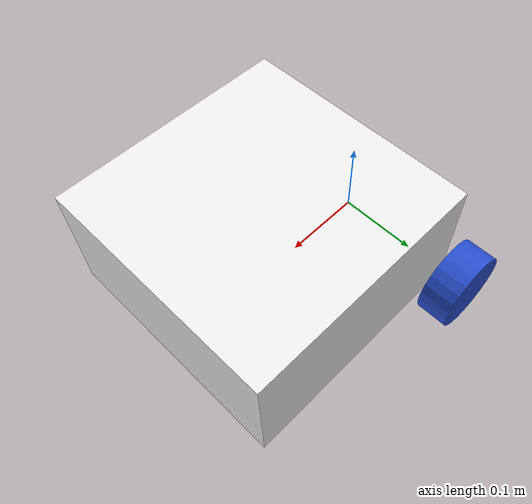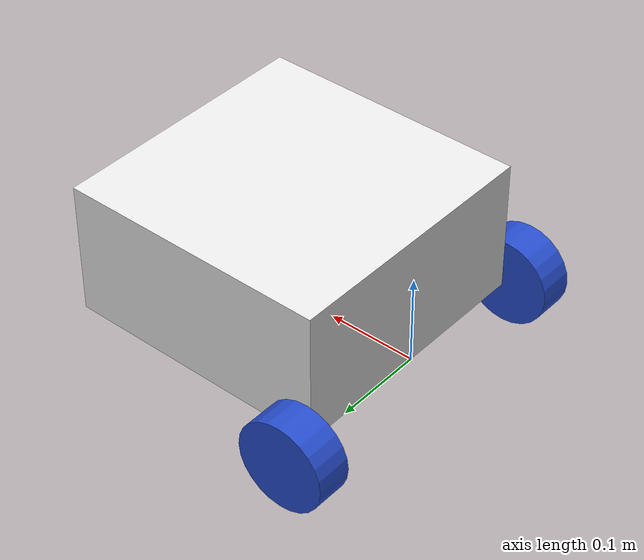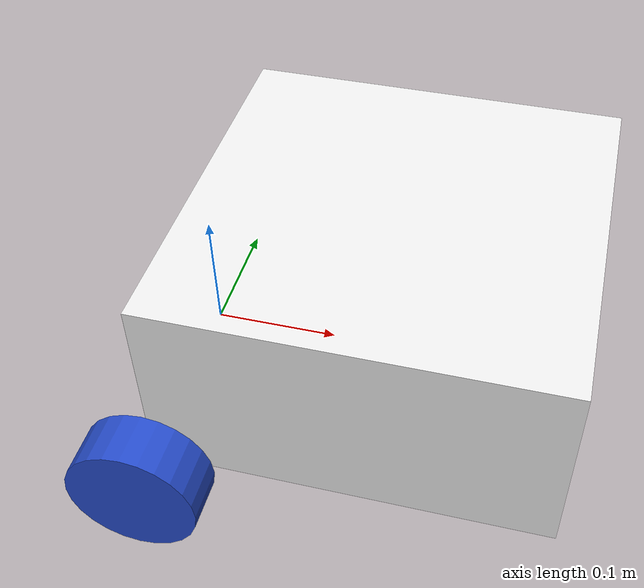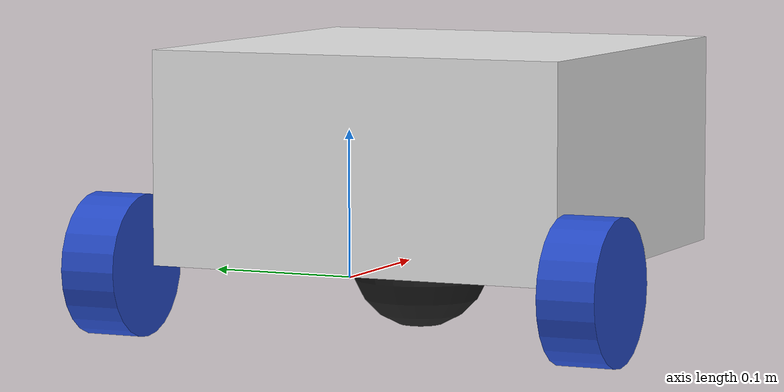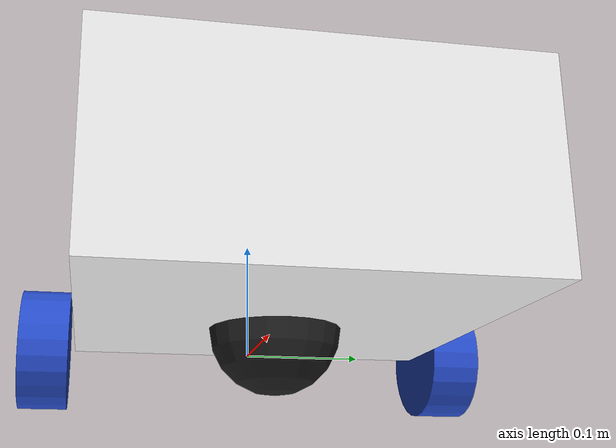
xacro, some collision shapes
<?xml version="1.0"?>
<robot xmlns:xacro="http://www.ros.org/wiki/xacro">
    <xacro:include filename="colors.xacro" />

    <link name="base_footprint">
    </link>

    <link name="base_link">
        <visual>
            <origin xyz="0 0.055 0" rpy="0 0 ${pi/2}"/>
            <geometry>
                <!-- box size="0.3 0.3 0.15"/ -->

                <mesh filename="file://$(find mpcc)/meshes/body.stl" scale="0.0013 0.001 0.004"/>

            </geometry>
            <material name="white"/>
        </visual>
        <collision>
            <origin xyz="0.15 0 0.075" rpy="0 0 0"/>
            <geometry>
                <box size="0.3 0.3 0.15"/>
            </geometry>
        </collision>
        <xacro:inertial_box mass="0.5" x="0.3" y="0.3" z="0.15">
            <origin xyz="0.15 0 0.075" rpy="0 0 0"/>
        </xacro:inertial_box>
    </link>
    <gazebo reference="base_link">
        <material>Gazebo/White</material>
    </gazebo>

    <joint name="base_joint" type="fixed">
        <parent link="base_footprint"/>
        <child link="base_link"/>
        <origin xyz="0 0 0"/>
    </joint>

    <!-- LEFT WHEEL -->

    <joint name="left_wheel_joint" type="continuous">
        <parent link="base_link"/>
        <child link="left_wheel"/>
        <origin xyz="0 0.175 0" rpy="-${pi/2} 0 0"/>
        <axis xyz="0 0 1"/>
    </joint>

    <link name="left_wheel">
        <visual>
            <geometry>
                <cylinder length="0.04" radius="0.05" />
            </geometry>
            <material name="blue"/>
        </visual>
        <collision>
            <geometry>
                <cylinder length="0.04" radius="0.05" />
            </geometry>
            <material name="blue"/>
        </collision>
        <xacro:inertial_cylinder mass="0.1" length="0.05" radius="0.05">
            <origin xyz="0 0 0" rpy="0 0 0"/>
        </xacro:inertial_cylinder>
    </link>

    <gazebo reference="left_wheel">
        <material>Gazebo/Blue</material>
    </gazebo>

    <!-- RIGHT WHEEL -->

    <joint name="right_wheel_joint" type="continuous">
        <parent link="base_link"/>
        <child link="right_wheel"/>
        <origin xyz="0 -0.175 0" rpy="${pi/2} 0 0"/>
        <axis xyz="0 0 -1"/>
    </joint>

    <link name="right_wheel">
        <visual>
            <geometry>
                <cylinder length="0.04" radius="0.05" />
            </geometry>
            <material name="blue"/>
        </visual>
        <collision>
            <geometry>
                <cylinder length="0.04" radius="0.05" />
            </geometry>
            <material name="blue"/>
        </collision>
        <xacro:inertial_cylinder mass="0.1" length="0.05" radius="0.05">
            <origin xyz="0 0 0" rpy="0 0 0"/>
        </xacro:inertial_cylinder>
    </link>

    <gazebo reference="right_wheel">
        <material>Gazebo/Blue</material>
    </gazebo>

    <!-- CASTER WHEEL -->

    <joint name="caster_wheel_joint" type="fixed">
        <parent link="base_link"/>
        <child link="caster_wheel"/>
        <origin xyz="0.12 0 0" rpy="0 0 0"/>
    </joint>

    <link name="caster_wheel">
        <visual>
            <geometry>
                <sphere radius="0.05" />
            </geometry>
            <material name="black"/>
        </visual>
        <collision>
            <geometry>
                <sphere radius="0.05" />
            </geometry>
            <material name="black"/>
        </collision>
        <xacro:inertial_sphere mass="0.1" radius="0.05">
            <origin xyz="0 0 0" rpy="0 0 0"/>
        </xacro:inertial_sphere>
    </link>
    <gazebo reference="caster_wheel">
        <material>Gazebo/Black</material>
    </gazebo>
    <gazebo reference="caster_wheel">
        <material>Gazebo/Black</material>
        <mu1 value="0.001"/>
        <mu2 value="0.001"/>
    </gazebo>

    <material name="red">
        <color rgba="1 0 0 1"/>
    </material>

</robot>
